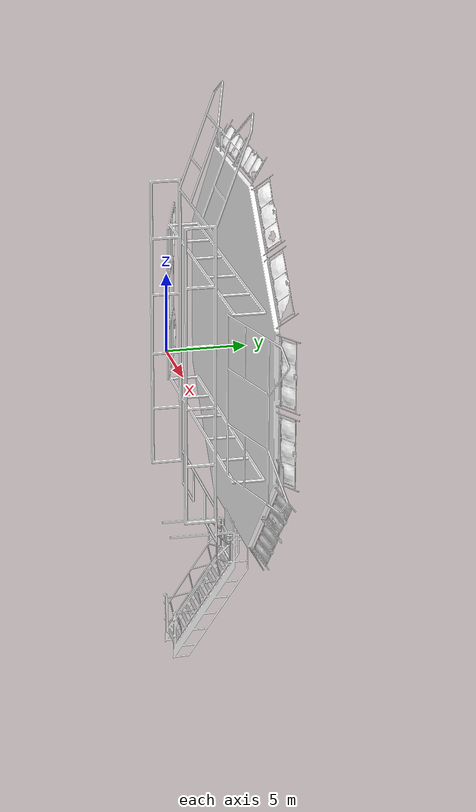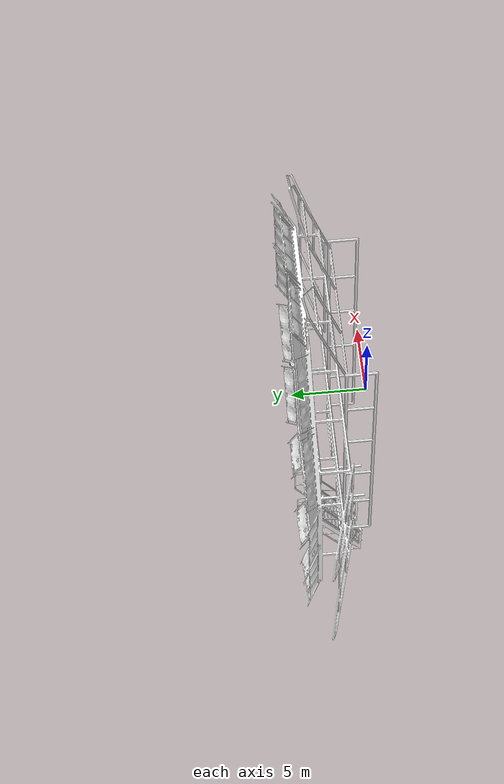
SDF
<?xml version="1.0" encoding="UTF-8"?>
<sdf version="1.11">
  <world name="helipad">

    <!-- 物理引擎 -->
    <physics type="ode">
      <max_step_size>0.004</max_step_size>
      <real_time_factor>1.0</real_time_factor>
      <real_time_update_rate>250</real_time_update_rate>
    </physics>

    <!-- 核心系统插件 -->
    <plugin name="gz::sim::systems::Physics" filename="gz-sim-physics-system"/>
    <plugin name="gz::sim::systems::UserCommands" filename="gz-sim-user-commands-system"/>
    <plugin name="gz::sim::systems::SceneBroadcaster" filename="gz-sim-scene-broadcaster-system"/>
    <plugin name="gz::sim::systems::Contact" filename="gz-sim-contact-system"/>
    <plugin name="gz::sim::systems::Imu" filename="gz-sim-imu-system"/>
    <plugin name="gz::sim::systems::AirPressure" filename="gz-sim-air-pressure-system"/>
    <plugin name="gz::sim::systems::ApplyLinkWrench" filename="gz-sim-apply-link-wrench-system"/>
    <plugin name="gz::sim::systems::NavSat" filename="gz-sim-navsat-system"/>
    <plugin name="gz::sim::systems::Sensors" filename="gz-sim-sensors-system">
      <render_engine>ogre2</render_engine>
    </plugin>

    <!-- GUI界面 -->
    <gui fullscreen="false">
      <plugin filename="MinimalScene" name="3D View">
        <gz-gui>
          <title>3D View</title>
          <property type="bool" key="showTitleBar">false</property>
          <property type="string" key="state">docked</property>
        </gz-gui>
        <engine>ogre2</engine>
        <scene>scene</scene>
        <ambient_light>0.4 0.4 0.4</ambient_light>
        <background_color>0.8 0.8 0.8</background_color>
        <camera_pose>-10 0 8 0 0.5 0</camera_pose>
        <camera_clip>
          <near>0.25</near>
          <far>25000</far>
        </camera_clip>
      </plugin>

      <plugin filename="EntityContextMenuPlugin" name="Entity context menu"/>
      <plugin filename="GzSceneManager" name="Scene Manager"/>
      <plugin filename="InteractiveViewControl" name="Interactive view control"/>
      <plugin filename="CameraTracking" name="Camera Tracking"/>
      <plugin filename="MarkerManager" name="Marker manager"/>
      <plugin filename="SelectEntities" name="Select Entities"/>
      <plugin filename="VisualizationCapabilities" name="Visualization Capabilities"/>
      <plugin filename="Spawn" name="Spawn Entities"/>

      <plugin name="World control" filename="WorldControl">
        <gz-gui>
          <title>World control</title>
          <property type="bool" key="showTitleBar">0</property>
          <property type="bool" key="resizable">0</property>
          <property type="double" key="height">72</property>
          <property type="double" key="width">121</property>
          <property type="double" key="z">1</property>
          <property type="string" key="state">floating</property>
          <anchors target="3D View">
            <line own="left" target="left"/>
            <line own="bottom" target="bottom"/>
          </anchors>
        </gz-gui>
        <play_pause>1</play_pause>
        <step>1</step>
        <start_paused>1</start_paused>
      </plugin>

      <plugin name="World stats" filename="WorldStats">
        <gz-gui>
          <title>World stats</title>
          <property type="bool" key="showTitleBar">0</property>
          <property type="bool" key="resizable">0</property>
          <property type="double" key="height">110</property>
          <property type="double" key="width">290</property>
          <property type="double" key="z">1</property>
          <property type="string" key="state">floating</property>
          <anchors target="3D View">
            <line own="right" target="right"/>
            <line own="bottom" target="bottom"/>
          </anchors>
        </gz-gui>
        <sim_time>1</sim_time>
        <real_time>1</real_time>
        <real_time_factor>1</real_time_factor>
        <iterations>1</iterations>
      </plugin>

      <plugin name="Entity tree" filename="EntityTree"/>
    </gui>

    <!-- 环境参数 -->
    <gravity>0 0 -9.8</gravity>
    <magnetic_field>6e-06 2.3e-05 -4.2e-05</magnetic_field>
    <atmosphere type="adiabatic"/>

    <scene>
      <grid>false</grid>
      <ambient>0.4 0.4 0.4 1</ambient>
      <background>0.7 0.7 0.7 1</background>
      <shadows>true</shadows>
    </scene>

    <!-- 加载停机坪模型 -->
    <include>
      <name>helipad</name>
      <uri>model://helipad</uri>
      <pose>0 0 0 0 0 0</pose>
    </include>

    <!-- 太阳光 -->
    <light name="sun" type="directional">
      <pose>0 0 1000 0 0 0</pose>
      <cast_shadows>true</cast_shadows>
      <intensity>1.2</intensity>
      <direction>0.1 0.7 -0.8</direction>
      <diffuse>1 1 1 1</diffuse>
      <specular>0.3 0.3 0.3 1</specular>
    </light>

    <spherical_coordinates>
      <surface_model>EARTH_WGS84</surface_model>
      <world_frame_orientation>ENU</world_frame_orientation>
      <latitude_deg>24.623911</latitude_deg>
      <longitude_deg>118.087898</longitude_deg>
      <elevation>0</elevation>
    </spherical_coordinates>

  </world>
</sdf>

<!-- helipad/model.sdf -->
<sdf version='1.11'>
  <model name='helipad'>
    <pose>0 0 0 0 0 0</pose>
    <self_collide>false</self_collide>
    <static>true</static>
    <link name="map">
      <gravity>true</gravity>
      <self_collide>false</self_collide>
      <pose>0 0 0 0 0 0</pose>
      <visual name="visual">
        <pose>0 0 0 0 0 0</pose>
        <geometry>
          <mesh>
            <uri>model://helipad/meshes/helipad.dae</uri>
          </mesh>
        </geometry>
      </visual>
      <collision name="collision">
        <pose>0 0 0 0 0 0 </pose>
        <geometry>
          <mesh>
            <uri>model://helipad/meshes/helipad.dae</uri>
          </mesh>
        </geometry>
      </collision>
    </link>
  </model>
</sdf>
